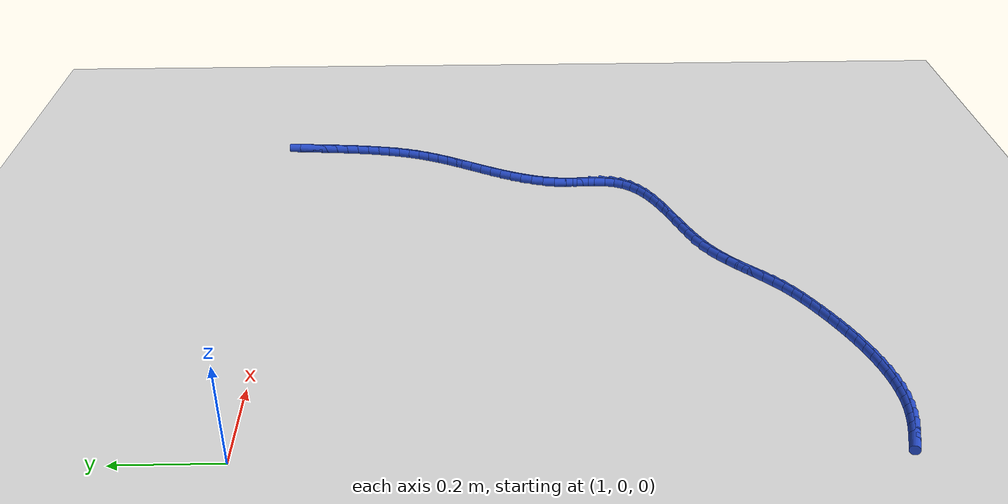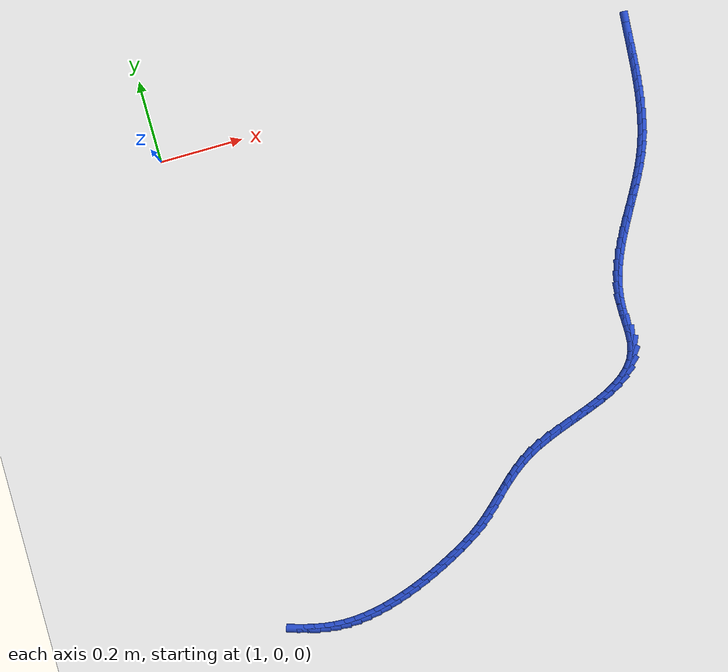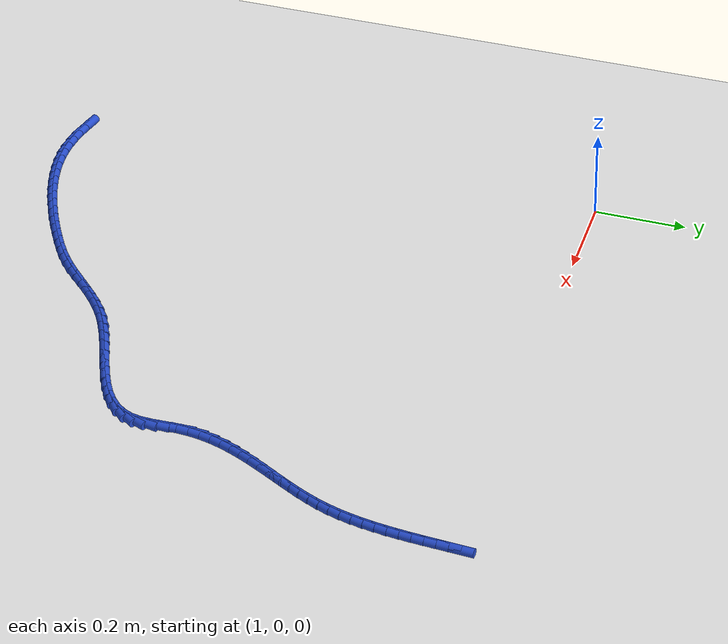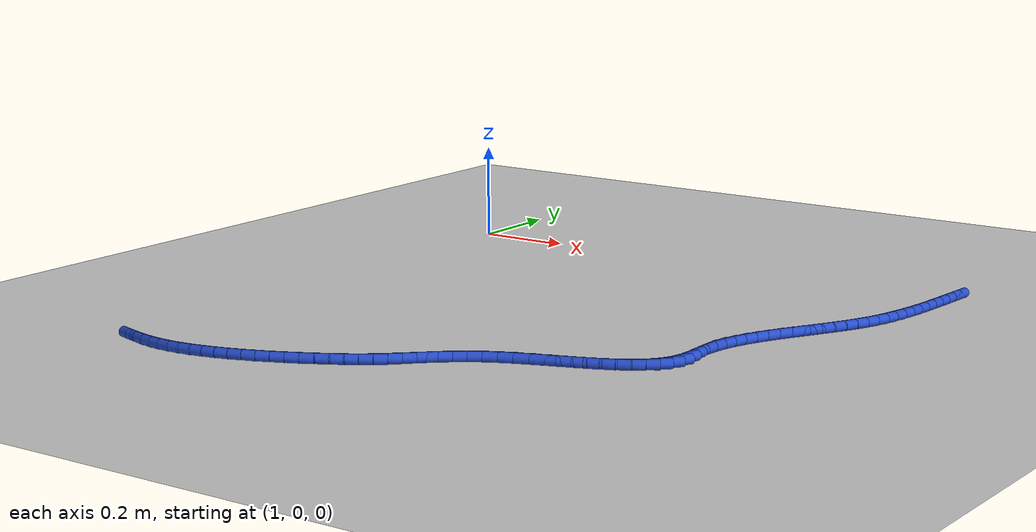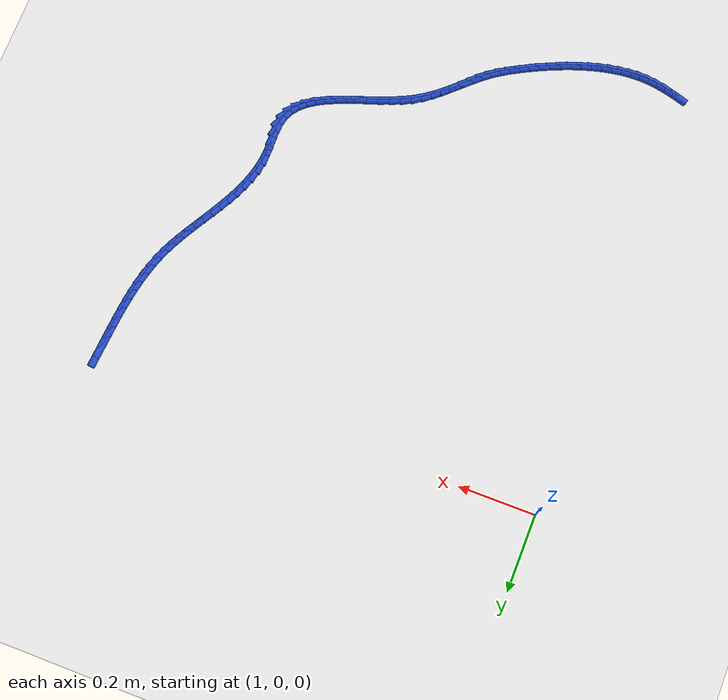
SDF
<sdf version="1.6">
 <world name="default">
  <model name="ground_plane">
   <static>1</static>
   <link name="link">
    <collision name="collision">
     <geometry><plane><normal>0 0 1</normal><size>100 100</size></plane></geometry>
     <surface><friction><ode><mu>100</mu><mu2>50</mu2></ode></friction></surface>
    </collision>
    <visual name="visual">
     <cast_shadows>0</cast_shadows>
     <geometry><plane><normal>0 0 1</normal><size>100 100</size></plane></geometry>
     <material>
      <script><uri>file://media/materials/scripts/gazebo.material</uri><name>Gazebo/WhiteGlow</name></script>
     </material>
    </visual>
   </link>
  </model>
  <model name="line">
   <link name="link_142">
    <pose>2.1596453572439294 0.006671324492739985 0.01 0 1.57 1.490713966930263</pose>
    <collision name="collision">
     <geometry><cylinder><radius>0.01</radius><length>0.08</length></cylinder></geometry>
    </collision>
    <visual name="visual">
     <material>
      <script><name>Gazebo/Blue</name><uri>file://media/materials/scripts/gazebo.material</uri></script>
     </material>
     <geometry><cylinder><radius>0.01</radius><length>0.08</length></cylinder></geometry>
    </visual>
   </link>
   <link name="link_143">
    <pose>2.157555107160567 -0.019374109094623566 0.01 0 1.57 1.4910467886138845</pose>
    <collision name="collision">
     <geometry><cylinder><radius>0.01</radius><length>0.08</length></cylinder></geometry>
    </collision>
    <visual name="visual">
     <material>
      <script><name>Gazebo/Blue</name><uri>file://media/materials/scripts/gazebo.material</uri></script>
     </material>
     <geometry><cylinder><radius>0.01</radius><length>0.08</length></cylinder></geometry>
    </visual>
   </link>
   <link name="link_144">
    <pose>2.155463413558285 -0.04554676646567959 0.01 0 1.57 1.4859185207809875</pose>
    <collision name="collision">
     <geometry><cylinder><radius>0.01</radius><length>0.08</length></cylinder></geometry>
    </collision>
    <visual name="visual">
     <material>
      <script><name>Gazebo/Blue</name><uri>file://media/materials/scripts/gazebo.material</uri></script>
     </material>
     <geometry><cylinder><radius>0.01</radius><length>0.08</length></cylinder></geometry>
    </visual>
   </link>
   <link name="link_145">
    <pose>2.15323071423497 -0.07178843334738891 0.01 0 1.57 1.4753526664296697</pose>
    <collision name="collision">
     <geometry><cylinder><radius>0.01</radius><length>0.08</length></cylinder></geometry>
    </collision>
    <visual name="visual">
     <material>
      <script><name>Gazebo/Blue</name><uri>file://media/materials/scripts/gazebo.material</uri></script>
     </material>
     <geometry><cylinder><radius>0.01</radius><length>0.08</length></cylinder></geometry>
    </visual>
   </link>
   <link name="link_146">
    <pose>2.1507174469885073 -0.09804089546671318 0.01 0 1.57 1.459320217050916</pose>
    <collision name="collision">
     <geometry><cylinder><radius>0.01</radius><length>0.08</length></cylinder></geometry>
    </collision>
    <visual name="visual">
     <material>
      <script><name>Gazebo/Blue</name><uri>file://media/materials/scripts/gazebo.material</uri></script>
     </material>
     <geometry><cylinder><radius>0.01</radius><length>0.08</length></cylinder></geometry>
    </visual>
   </link>
   <link name="link_147">
    <pose>2.1477840496167824 -0.12424593855061168 0.01 0 1.57 1.4377490927190884</pose>
    <collision name="collision">
     <geometry><cylinder><radius>0.01</radius><length>0.08</length></cylinder></geometry>
    </collision>
    <visual name="visual">
     <material>
      <script><name>Gazebo/Blue</name><uri>file://media/materials/scripts/gazebo.material</uri></script>
     </material>
     <geometry><cylinder><radius>0.01</radius><length>0.08</length></cylinder></geometry>
    </visual>
   </link>
   <link name="link_148">
    <pose>2.144290959917682 -0.15034534832604607 0.01 0 1.57 1.4105379036552386</pose>
    <collision name="collision">
     <geometry><cylinder><radius>0.01</radius><length>0.08</length></cylinder></geometry>
    </collision>
    <visual name="visual">
     <material>
      <script><name>Gazebo/Blue</name><uri>file://media/materials/scripts/gazebo.material</uri></script>
     </material>
     <geometry><cylinder><radius>0.01</radius><length>0.08</length></cylinder></geometry>
    </visual>
   </link>
   <link name="link_149">
    <pose>2.1400986156890895 -0.17628091051997705 0.01 0 1.57 1.377575152286418</pose>
    <collision name="collision">
     <geometry><cylinder><radius>0.01</radius><length>0.08</length></cylinder></geometry>
    </collision>
    <visual name="visual">
     <material>
      <script><name>Gazebo/Blue</name><uri>file://media/materials/scripts/gazebo.material</uri></script>
     </material>
     <geometry><cylinder><radius>0.01</radius><length>0.08</length></cylinder></geometry>
    </visual>
   </link>
   <link name="link_150">
    <pose>2.1350674547288926 -0.2019944108593657 0.01 0 1.57 1.3387650846030492</pose>
    <collision name="collision">
     <geometry><cylinder><radius>0.01</radius><length>0.08</length></cylinder></geometry>
    </collision>
    <visual name="visual">
     <material>
      <script><name>Gazebo/Blue</name><uri>file://media/materials/scripts/gazebo.material</uri></script>
     </material>
     <geometry><cylinder><radius>0.01</radius><length>0.08</length></cylinder></geometry>
    </visual>
   </link>
   <link name="link_151">
    <pose>2.1290579148349758 -0.22742763507117267 0.01 0 1.57 1.2940610272359603</pose>
    <collision name="collision">
     <geometry><cylinder><radius>0.01</radius><length>0.08</length></cylinder></geometry>
    </collision>
    <visual name="visual">
     <material>
      <script><name>Gazebo/Blue</name><uri>file://media/materials/scripts/gazebo.material</uri></script>
     </material>
     <geometry><cylinder><radius>0.01</radius><length>0.08</length></cylinder></geometry>
    </visual>
   </link>
   <link name="link_152">
    <pose>2.121930433805225 -0.2525223688823589 0.01 0 1.57 1.2435059514300444</pose>
    <collision name="collision">
     <geometry><cylinder><radius>0.01</radius><length>0.08</length></cylinder></geometry>
    </collision>
    <visual name="visual">
     <material>
      <script><name>Gazebo/Blue</name><uri>file://media/materials/scripts/gazebo.material</uri></script>
     </material>
     <geometry><cylinder><radius>0.01</radius><length>0.08</length></cylinder></geometry>
    </visual>
   </link>
   <link name="link_153">
    <pose>2.113545449437526 -0.2772203980198853 0.01 0 1.57 1.18800500666851</pose>
    <collision name="collision">
     <geometry><cylinder><radius>0.01</radius><length>0.08</length></cylinder></geometry>
    </collision>
    <visual name="visual">
     <material>
      <script><name>Gazebo/Blue</name><uri>file://media/materials/scripts/gazebo.material</uri></script>
     </material>
     <geometry><cylinder><radius>0.01</radius><length>0.08</length></cylinder></geometry>
    </visual>
   </link>
   <link name="link_154">
    <pose>2.1037813334355597 -0.30146985572381835 0.01 0 1.57 1.1373321220825232</pose>
    <collision name="collision">
     <geometry><cylinder><radius>0.01</radius><length>0.08</length></cylinder></geometry>
    </collision>
    <visual name="visual">
     <material>
      <script><name>Gazebo/Blue</name><uri>file://media/materials/scripts/gazebo.material</uri></script>
     </material>
     <geometry><cylinder><radius>0.01</radius><length>0.08</length></cylinder></geometry>
    </visual>
   </link>
   <link name="link_155">
    <pose>2.0927513252830425 -0.32530200415933735 0.01 0 1.57 1.0981591488980589</pose>
    <collision name="collision">
     <geometry><cylinder><radius>0.01</radius><length>0.08</length></cylinder></geometry>
    </collision>
    <visual name="visual">
     <material>
      <script><name>Gazebo/Blue</name><uri>file://media/materials/scripts/gazebo.material</uri></script>
     </material>
     <geometry><cylinder><radius>0.01</radius><length>0.08</length></cylinder></geometry>
    </visual>
   </link>
   <link name="link_156">
    <pose>2.080733741773238 -0.34880653283018986 0.01 0 1.57 1.0703942964932531</pose>
    <collision name="collision">
     <geometry><cylinder><radius>0.01</radius><length>0.08</length></cylinder></geometry>
    </collision>
    <visual name="visual">
     <material>
      <script><name>Gazebo/Blue</name><uri>file://media/materials/scripts/gazebo.material</uri></script>
     </material>
     <geometry><cylinder><radius>0.01</radius><length>0.08</length></cylinder></geometry>
    </visual>
   </link>
   <link name="link_157">
    <pose>2.068010329199488 -0.3720743450747982 0.01 0 1.57 1.0537744435064835</pose>
    <collision name="collision">
     <geometry><cylinder><radius>0.01</radius><length>0.08</length></cylinder></geometry>
    </collision>
    <visual name="visual">
     <material>
      <script><name>Gazebo/Blue</name><uri>file://media/materials/scripts/gazebo.material</uri></script>
     </material>
     <geometry><cylinder><radius>0.01</radius><length>0.08</length></cylinder></geometry>
    </visual>
   </link>
   <link name="link_158">
    <pose>2.054862833855132 -0.3951963442315844 0.01 0 1.57 1.0481070655105835</pose>
    <collision name="collision">
     <geometry><cylinder><radius>0.01</radius><length>0.08</length></cylinder></geometry>
    </collision>
    <visual name="visual">
     <material>
      <script><name>Gazebo/Blue</name><uri>file://media/materials/scripts/gazebo.material</uri></script>
     </material>
     <geometry><cylinder><radius>0.01</radius><length>0.08</length></cylinder></geometry>
    </visual>
   </link>
   <link name="link_159">
    <pose>2.041573002033511 -0.4182634336389699 0.01 0 1.57 1.05332701419321</pose>
    <collision name="collision">
     <geometry><cylinder><radius>0.01</radius><length>0.08</length></cylinder></geometry>
    </collision>
    <visual name="visual">
     <material>
      <script><name>Gazebo/Blue</name><uri>file://media/materials/scripts/gazebo.material</uri></script>
     </material>
     <geometry><cylinder><radius>0.01</radius><length>0.08</length></cylinder></geometry>
    </visual>
   </link>
   <link name="link_160">
    <pose>2.0284225800279643 -0.44136651663537646 0.01 0 1.57 1.0695151847565791</pose>
    <collision name="collision">
     <geometry><cylinder><radius>0.01</radius><length>0.08</length></cylinder></geometry>
    </collision>
    <visual name="visual">
     <material>
      <script><name>Gazebo/Blue</name><uri>file://media/materials/scripts/gazebo.material</uri></script>
     </material>
     <geometry><cylinder><radius>0.01</radius><length>0.08</length></cylinder></geometry>
    </visual>
   </link>
   <link name="link_161">
    <pose>2.0156933141318336 -0.4645964965592258 0.01 0 1.57 1.0968821565063727</pose>
    <collision name="collision">
     <geometry><cylinder><radius>0.01</radius><length>0.08</length></cylinder></geometry>
    </collision>
    <visual name="visual">
     <material>
      <script><name>Gazebo/Blue</name><uri>file://media/materials/scripts/gazebo.material</uri></script>
     </material>
     <geometry><cylinder><radius>0.01</radius><length>0.08</length></cylinder></geometry>
    </visual>
   </link>
   <link name="link_162">
    <pose>2.003666950638458 -0.4880442767489397 0.01 0 1.57 1.1357134553507002</pose>
    <collision name="collision">
     <geometry><cylinder><radius>0.01</radius><length>0.08</length></cylinder></geometry>
    </collision>
    <visual name="visual">
     <material>
      <script><name>Gazebo/Blue</name><uri>file://media/materials/scripts/gazebo.material</uri></script>
     </material>
     <geometry><cylinder><radius>0.01</radius><length>0.08</length></cylinder></geometry>
    </visual>
   </link>
   <link name="link_163">
    <pose>1.992625235841179 -0.5118007605429398 0.01 0 1.57 1.186267929265912</pose>
    <collision name="collision">
     <geometry><cylinder><radius>0.01</radius><length>0.08</length></cylinder></geometry>
    </collision>
    <visual name="visual">
     <material>
      <script><name>Gazebo/Blue</name><uri>file://media/materials/scripts/gazebo.material</uri></script>
     </material>
     <geometry><cylinder><radius>0.01</radius><length>0.08</length></cylinder></geometry>
    </visual>
   </link>
   <link name="link_164">
    <pose>1.9828499160333353 -0.5359568512796484 0.01 0 1.57 1.2486206070266457</pose>
    <collision name="collision">
     <geometry><cylinder><radius>0.01</radius><length>0.08</length></cylinder></geometry>
    </collision>
    <visual name="visual">
     <material>
      <script><name>Gazebo/Blue</name><uri>file://media/materials/scripts/gazebo.material</uri></script>
     </material>
     <geometry><cylinder><radius>0.01</radius><length>0.08</length></cylinder></geometry>
    </visual>
   </link>
   <link name="link_165">
    <pose>1.9746227375082688 -0.5606034522974861 0.01 0 1.57 1.3224521806362144</pose>
    <collision name="collision">
     <geometry><cylinder><radius>0.01</radius><length>0.08</length></cylinder></geometry>
    </collision>
    <visual name="visual">
     <material>
      <script><name>Gazebo/Blue</name><uri>file://media/materials/scripts/gazebo.material</uri></script>
     </material>
     <geometry><cylinder><radius>0.01</radius><length>0.08</length></cylinder></geometry>
    </visual>
   </link>
   <link name="link_166">
    <pose>1.9682254465593192 -0.585831466934875 0.01 0 1.57 1.4068148594786944</pose>
    <collision name="collision">
     <geometry><cylinder><radius>0.01</radius><length>0.08</length></cylinder></geometry>
    </collision>
    <visual name="visual">
     <material>
      <script><name>Gazebo/Blue</name><uri>file://media/materials/scripts/gazebo.material</uri></script>
     </material>
     <geometry><cylinder><radius>0.01</radius><length>0.08</length></cylinder></geometry>
    </visual>
   </link>
   <link name="link_167">
    <pose>1.9639397894798272 -0.6117317985302368 0.01 0 1.57 1.4998550329949896</pose>
    <collision name="collision">
     <geometry><cylinder><radius>0.01</radius><length>0.08</length></cylinder></geometry>
    </collision>
    <visual name="visual">
     <material>
      <script><name>Gazebo/Blue</name><uri>file://media/materials/scripts/gazebo.material</uri></script>
     </material>
     <geometry><cylinder><radius>0.01</radius><length>0.08</length></cylinder></geometry>
    </visual>
   </link>
   <link name="link_168">
    <pose>1.9620451448553669 -0.6383941990070843 0.01 0 1.57 -1.5650905997355675</pose>
    <collision name="collision">
     <geometry><cylinder><radius>0.01</radius><length>0.08</length></cylinder></geometry>
    </collision>
    <visual name="visual">
     <material>
      <script><name>Gazebo/Blue</name><uri>file://media/materials/scripts/gazebo.material</uri></script>
     </material>
     <geometry><cylinder><radius>0.01</radius><length>0.08</length></cylinder></geometry>
    </visual>
   </link>
   <link name="link_169">
    <pose>1.9622004135427602 -0.6656066823303368 0.01 0 1.57 -1.5552867641326729</pose>
    <collision name="collision">
     <geometry><cylinder><radius>0.01</radius><length>0.08</length></cylinder></geometry>
    </collision>
    <visual name="visual">
     <material>
      <script><name>Gazebo/Blue</name><uri>file://media/materials/scripts/gazebo.material</uri></script>
     </material>
     <geometry><cylinder><radius>0.01</radius><length>0.08</length></cylinder></geometry>
    </visual>
   </link>
   <link name="link_170">
    <pose>1.9626168256264271 -0.6924532610103301 0.01 0 1.57 1.5191116607278143</pose>
    <collision name="collision">
     <geometry><cylinder><radius>0.01</radius><length>0.08</length></cylinder></geometry>
    </collision>
    <visual name="visual">
     <material>
      <script><name>Gazebo/Blue</name><uri>file://media/materials/scripts/gazebo.material</uri></script>
     </material>
     <geometry><cylinder><radius>0.01</radius><length>0.08</length></cylinder></geometry>
    </visual>
   </link>
   <link name="link_171">
    <pose>1.9612995298582385 -0.7179177303252483 0.01 0 1.57 1.3570255863917549</pose>
    <collision name="collision">
     <geometry><cylinder><radius>0.01</radius><length>0.08</length></cylinder></geometry>
    </collision>
    <visual name="visual">
     <material>
      <script><name>Gazebo/Blue</name><uri>file://media/materials/scripts/gazebo.material</uri></script>
     </material>
     <geometry><cylinder><radius>0.01</radius><length>0.08</length></cylinder></geometry>
    </visual>
   </link>
   <link name="link_172">
    <pose>1.956288103492908 -0.7410025337274375 0.01 0 1.57 1.1303432248976586</pose>
    <collision name="collision">
     <geometry><cylinder><radius>0.01</radius><length>0.08</length></cylinder></geometry>
    </collision>
    <visual name="visual">
     <material>
      <script><name>Gazebo/Blue</name><uri>file://media/materials/scripts/gazebo.material</uri></script>
     </material>
     <geometry><cylinder><radius>0.01</radius><length>0.08</length></cylinder></geometry>
    </visual>
   </link>
   <link name="link_173">
    <pose>1.9467191729284845 -0.7613043305601355 0.01 0 1.57 0.9156881335399913</pose>
    <collision name="collision">
     <geometry><cylinder><radius>0.01</radius><length>0.08</length></cylinder></geometry>
    </collision>
    <visual name="visual">
     <material>
      <script><name>Gazebo/Blue</name><uri>file://media/materials/scripts/gazebo.material</uri></script>
     </material>
     <geometry><cylinder><radius>0.01</radius><length>0.08</length></cylinder></geometry>
    </visual>
   </link>
   <link name="link_174">
    <pose>1.9330287169437583 -0.7791235734626183 0.01 0 1.57 0.7362287923078192</pose>
    <collision name="collision">
     <geometry><cylinder><radius>0.01</radius><length>0.08</length></cylinder></geometry>
    </collision>
    <visual name="visual">
     <material>
      <script><name>Gazebo/Blue</name><uri>file://media/materials/scripts/gazebo.material</uri></script>
     </material>
     <geometry><cylinder><radius>0.01</radius><length>0.08</length></cylinder></geometry>
    </visual>
   </link>
   <link name="link_175">
    <pose>1.9157279671065288 -0.7948014756939903 0.01 0 1.57 0.5973744874964181</pose>
    <collision name="collision">
     <geometry><cylinder><radius>0.01</radius><length>0.08</length></cylinder></geometry>
    </collision>
    <visual name="visual">
     <material>
      <script><name>Gazebo/Blue</name><uri>file://media/materials/scripts/gazebo.material</uri></script>
     </material>
     <geometry><cylinder><radius>0.01</radius><length>0.08</length></cylinder></geometry>
    </visual>
   </link>
   <link name="link_176">
    <pose>1.8953281549845942 -0.8086792505133554 0.01 0 1.57 0.4953196164539025</pose>
    <collision name="collision">
     <geometry><cylinder><radius>0.01</radius><length>0.08</length></cylinder></geometry>
    </collision>
    <visual name="visual">
     <material>
      <script><name>Gazebo/Blue</name><uri>file://media/materials/scripts/gazebo.material</uri></script>
     </material>
     <geometry><cylinder><radius>0.01</radius><length>0.08</length></cylinder></geometry>
    </visual>
   </link>
   <link name="link_177">
    <pose>1.8723405121457537 -0.8210981111798172 0.01 0 1.57 0.42359193768522585</pose>
    <collision name="collision">
     <geometry><cylinder><radius>0.01</radius><length>0.08</length></cylinder></geometry>
    </collision>
    <visual name="visual">
     <material>
      <script><name>Gazebo/Blue</name><uri>file://media/materials/scripts/gazebo.material</uri></script>
     </material>
     <geometry><cylinder><radius>0.01</radius><length>0.08</length></cylinder></geometry>
    </visual>
   </link>
   <link name="link_178">
    <pose>1.8472762701578058 -0.8323992709524798 0.01 0 1.57 0.3763827350987682</pose>
    <collision name="collision">
     <geometry><cylinder><radius>0.01</radius><length>0.08</length></cylinder></geometry>
    </collision>
    <visual name="visual">
     <material>
      <script><name>Gazebo/Blue</name><uri>file://media/materials/scripts/gazebo.material</uri></script>
     </material>
     <geometry><cylinder><radius>0.01</radius><length>0.08</length></cylinder></geometry>
    </visual>
   </link>
   <link name="link_179">
    <pose>1.8206466605885487 -0.8429239430904463 0.01 0 1.57 0.3494912363657762</pose>
    <collision name="collision">
     <geometry><cylinder><radius>0.01</radius><length>0.08</length></cylinder></geometry>
    </collision>
    <visual name="visual">
     <material>
      <script><name>Gazebo/Blue</name><uri>file://media/materials/scripts/gazebo.material</uri></script>
     </material>
     <geometry><cylinder><radius>0.01</radius><length>0.08</length></cylinder></geometry>
    </visual>
   </link>
   <link name="link_180">
    <pose>1.792962915005782 -0.8530133408528207 0.01 0 1.57 0.34033151138237805</pose>
    <collision name="collision">
     <geometry><cylinder><radius>0.01</radius><length>0.08</length></cylinder></geometry>
    </collision>
    <visual name="visual">
     <material>
      <script><name>Gazebo/Blue</name><uri>file://media/materials/scripts/gazebo.material</uri></script>
     </material>
     <geometry><cylinder><radius>0.01</radius><length>0.08</length></cylinder></geometry>
    </visual>
   </link>
   <link name="link_181">
    <pose>1.764736264977303 -0.8630086774987074 0.01 0 1.57 0.3477309158872489</pose>
    <collision name="collision">
     <geometry><cylinder><radius>0.01</radius><length>0.08</length></cylinder></geometry>
    </collision>
    <visual name="visual">
     <material>
      <script><name>Gazebo/Blue</name><uri>file://media/materials/scripts/gazebo.material</uri></script>
     </material>
     <geometry><cylinder><radius>0.01</radius><length>0.08</length></cylinder></geometry>
    </visual>
   </link>
   <link name="link_182">
    <pose>1.7364779420709118 -0.8732511662872088 0.01 0 1.57 0.37176658622732095</pose>
    <collision name="collision">
     <geometry><cylinder><radius>0.01</radius><length>0.08</length></cylinder></geometry>
    </collision>
    <visual name="visual">
     <material>
      <script><name>Gazebo/Blue</name><uri>file://media/materials/scripts/gazebo.material</uri></script>
     </material>
     <geometry><cylinder><radius>0.01</radius><length>0.08</length></cylinder></geometry>
    </visual>
   </link>
   <link name="link_183">
    <pose>1.7086991778544072 -0.8840820204774293 0.01 0 1.57 0.4136847977145408</pose>
    <collision name="collision">
     <geometry><cylinder><radius>0.01</radius><length>0.08</length></cylinder></geometry>
    </collision>
    <visual name="visual">
     <material>
      <script><name>Gazebo/Blue</name><uri>file://media/materials/scripts/gazebo.material</uri></script>
     </material>
     <geometry><cylinder><radius>0.01</radius><length>0.08</length></cylinder></geometry>
    </visual>
   </link>
   <link name="link_184">
    <pose>1.6819112038955875 -0.895842453328473 0.01 0 1.57 0.4758554806199411</pose>
    <collision name="collision">
     <geometry><cylinder><radius>0.01</radius><length>0.08</length></cylinder></geometry>
    </collision>
    <visual name="visual">
     <material>
      <script><name>Gazebo/Blue</name><uri>file://media/materials/scripts/gazebo.material</uri></script>
     </material>
     <geometry><cylinder><radius>0.01</radius><length>0.08</length></cylinder></geometry>
    </visual>
   </link>
   <link name="link_185">
    <pose>1.656625251762251 -0.9088736780994433 0.01 0 1.57 0.5575635399087147</pose>
    <collision name="collision">
     <geometry><cylinder><radius>0.01</radius><length>0.08</length></cylinder></geometry>
    </collision>
    <visual name="visual">
     <material>
      <script><name>Gazebo/Blue</name><uri>file://media/materials/scripts/gazebo.material</uri></script>
     </material>
     <geometry><cylinder><radius>0.01</radius><length>0.08</length></cylinder></geometry>
    </visual>
   </link>
   <link name="link_186">
    <pose>1.6332587301314405 -0.9234441193218855 0.01 0 1.57 0.6343387461749759</pose>
    <collision name="collision">
     <geometry><cylinder><radius>0.01</radius><length>0.08</length></cylinder></geometry>
    </collision>
    <visual name="visual">
     <material>
      <script><name>Gazebo/Blue</name><uri>file://media/materials/scripts/gazebo.material</uri></script>
     </material>
     <geometry><cylinder><radius>0.01</radius><length>0.08</length></cylinder></geometry>
    </visual>
   </link>
   <link name="link_187">
    <pose>1.6116304473324177 -0.9393578014509942 0.01 0 1.57 0.6934701820432766</pose>
    <collision name="collision">
     <geometry><cylinder><radius>0.01</radius><length>0.08</length></cylinder></geometry>
    </collision>
    <visual name="visual">
     <material>
      <script><name>Gazebo/Blue</name><uri>file://media/materials/scripts/gazebo.material</uri></script>
     </material>
     <geometry><cylinder><radius>0.01</radius><length>0.08</length></cylinder></geometry>
    </visual>
   </link>
   <link name="link_188">
    <pose>1.591323990529443 -0.9562362620333084 0.01 0 1.57 0.7328976451598445</pose>
    <collision name="collision">
     <geometry><cylinder><radius>0.01</radius><length>0.08</length></cylinder></geometry>
    </collision>
    <visual name="visual">
     <material>
      <script><name>Gazebo/Blue</name><uri>file://media/materials/scripts/gazebo.material</uri></script>
     </material>
     <geometry><cylinder><radius>0.01</radius><length>0.08</length></cylinder></geometry>
    </visual>
   </link>
   <link name="link_189">
    <pose>1.571922386906376 -0.9737006041770286 0.01 0 1.57 0.751452079212987</pose>
    <collision name="collision">
     <geometry><cylinder><radius>0.01</radius><length>0.08</length></cylinder></geometry>
    </collision>
    <visual name="visual">
     <material>
      <script><name>Gazebo/Blue</name><uri>file://media/materials/scripts/gazebo.material</uri></script>
     </material>
     <geometry><cylinder><radius>0.01</radius><length>0.08</length></cylinder></geometry>
    </visual>
   </link>
   <link name="link_190">
    <pose>1.5530086636470788 -0.9913719309903575 0.01 0 1.57 0.748449695418957</pose>
    <collision name="collision">
     <geometry><cylinder><radius>0.01</radius><length>0.08</length></cylinder></geometry>
    </collision>
    <visual name="visual">
     <material>
      <script><name>Gazebo/Blue</name><uri>file://media/materials/scripts/gazebo.material</uri></script>
     </material>
     <geometry><cylinder><radius>0.01</radius><length>0.08</length></cylinder></geometry>
    </visual>
   </link>
   <link name="link_191">
    <pose>1.5341658479354128 -1.008871345581495 0.01 0 1.57 0.7234842778627935</pose>
    <collision name="collision">
     <geometry><cylinder><radius>0.01</radius><length>0.08</length></cylinder></geometry>
    </collision>
    <visual name="visual">
     <material>
      <script><name>Gazebo/Blue</name><uri>file://media/materials/scripts/gazebo.material</uri></script>
     </material>
     <geometry><cylinder><radius>0.01</radius><length>0.08</length></cylinder></geometry>
    </visual>
   </link>
   <link name="link_192">
    <pose>1.514976966955239 -1.0258199510586439 0.01 0 1.57 0.6764916088470139</pose>
    <collision name="collision">
     <geometry><cylinder><radius>0.01</radius><length>0.08</length></cylinder></geometry>
    </collision>
    <visual name="visual">
     <material>
      <script><name>Gazebo/Blue</name><uri>file://media/materials/scripts/gazebo.material</uri></script>
     </material>
     <geometry><cylinder><radius>0.01</radius><length>0.08</length></cylinder></geometry>
    </visual>
   </link>
   <link name="link_193">
    <pose>1.4950250478904183 -1.0418388505300045 0.01 0 1.57 0.6117529380137335</pose>
    <collision name="collision">
     <geometry><cylinder><radius>0.01</radius><length>0.08</length></cylinder></geometry>
    </collision>
    <visual name="visual">
     <material>
      <script><name>Gazebo/Blue</name><uri>file://media/materials/scripts/gazebo.material</uri></script>
     </material>
     <geometry><cylinder><radius>0.01</radius><length>0.08</length></cylinder></geometry>
    </visual>
   </link>
   <link name="link_194">
    <pose>1.4739567872891588 -1.0566188946109885 0.01 0 1.57 0.5530392176780746</pose>
    <collision name="collision">
     <geometry><cylinder><radius>0.01</radius><length>0.08</length></cylinder></geometry>
    </collision>
    <visual name="visual">
     <material>
      <script><name>Gazebo/Blue</name><uri>file://media/materials/scripts/gazebo.material</uri></script>
     </material>
     <geometry><cylinder><radius>0.01</radius><length>0.08</length></cylinder></geometry>
    </visual>
   </link>
   <link name="link_195">
    <pose>1.4518161880988432 -1.0702861688408318 0.01 0 1.57 0.5091386542021716</pose>
    <collision name="collision">
     <geometry><cylinder><radius>0.01</radius><length>0.08</length></cylinder></geometry>
    </collision>
    <visual name="visual">
     <material>
      <script><name>Gazebo/Blue</name><uri>file://media/materials/scripts/gazebo.material</uri></script>
     </material>
     <geometry><cylinder><radius>0.01</radius><length>0.08</length></cylinder></geometry>
    </visual>
   </link>
   <link name="link_196">
    <pose>1.4288002247680316 -1.0831343335569585 0.01 0 1.57 0.47931383028668095</pose>
    <collision name="collision">
     <geometry><cylinder><radius>0.01</radius><length>0.08</length></cylinder></geometry>
    </collision>
    <visual name="visual">
     <material>
      <script><name>Gazebo/Blue</name><uri>file://media/materials/scripts/gazebo.material</uri></script>
     </material>
     <geometry><cylinder><radius>0.01</radius><length>0.08</length></cylinder></geometry>
    </visual>
   </link>
   <link name="link_197">
    <pose>1.4051042140612224 -1.0954500746867744 0.01 0 1.57 0.45564836634161904</pose>
    <collision name="collision">
     <geometry><cylinder><radius>0.01</radius><length>0.08</length></cylinder></geometry>
    </collision>
    <visual name="visual">
     <material>
      <script><name>Gazebo/Blue</name><uri>file://media/materials/scripts/gazebo.material</uri></script>
     </material>
     <geometry><cylinder><radius>0.01</radius><length>0.08</length></cylinder></geometry>
    </visual>
   </link>
   <link name="link_198">
    <pose>1.3808708820888178 -1.1073253904559908 0.01 0 1.57 0.42984885341739476</pose>
    <collision name="collision">
     <geometry><cylinder><radius>0.01</radius><length>0.08</length></cylinder></geometry>
    </collision>
    <visual name="visual">
     <material>
      <script><name>Gazebo/Blue</name><uri>file://media/materials/scripts/gazebo.material</uri></script>
     </material>
     <geometry><cylinder><radius>0.01</radius><length>0.08</length></cylinder></geometry>
    </visual>
   </link>
   <link name="link_199">
    <pose>1.3561861071767907 -1.1186418317268534 0.01 0 1.57 0.4012293039221145</pose>
    <collision name="collision">
     <geometry><cylinder><radius>0.01</radius><length>0.08</length></cylinder></geometry>
    </collision>
    <visual name="visual">
     <material>
      <script><name>Gazebo/Blue</name><uri>file://media/materials/scripts/gazebo.material</uri></script>
     </material>
     <geometry><cylinder><radius>0.01</radius><length>0.08</length></cylinder></geometry>
    </visual>
   </link>
   <link name="link_200">
    <pose>1.3311329355111832 -1.1292704649357423 0.01 0 1.57 0.3694514255431271</pose>
    <collision name="collision">
     <geometry><cylinder><radius>0.01</radius><length>0.08</length></cylinder></geometry>
    </collision>
    <visual name="visual">
     <material>
      <script><name>Gazebo/Blue</name><uri>file://media/materials/scripts/gazebo.material</uri></script>
     </material>
     <geometry><cylinder><radius>0.01</radius><length>0.08</length></cylinder></geometry>
    </visual>
   </link>
   <link name="link_201">
    <pose>1.305794413278037 -1.13908235651904 0.01 0 1.57 0.3341237526181898</pose>
    <collision name="collision">
     <geometry><cylinder><radius>0.01</radius><length>0.08</length></cylinder></geometry>
    </collision>
    <visual name="visual">
     <material>
      <script><name>Gazebo/Blue</name><uri>file://media/materials/scripts/gazebo.material</uri></script>
     </material>
     <geometry><cylinder><radius>0.01</radius><length>0.08</length></cylinder></geometry>
    </visual>
   </link>
   <link name="link_202">
    <pose>1.2802535866633933 -1.1479485729131276 0.01 0 1.57 0.2947992938235111</pose>
    <collision name="collision">
     <geometry><cylinder><radius>0.01</radius><length>0.08</length></cylinder></geometry>
    </collision>
    <visual name="visual">
     <material>
      <script><name>Gazebo/Blue</name><uri>file://media/materials/scripts/gazebo.material</uri></script>
     </material>
     <geometry><cylinder><radius>0.01</radius><length>0.08</length></cylinder></geometry>
    </visual>
   </link>
   <link name="link_203">
    <pose>1.254593501853294 -1.1557401805543868 0.01 0 1.57 0.2509760765649676</pose>
    <collision name="collision">
     <geometry><cylinder><radius>0.01</radius><length>0.08</length></cylinder></geometry>
    </collision>
    <visual name="visual">
     <material>
      <script><name>Gazebo/Blue</name><uri>file://media/materials/scripts/gazebo.material</uri></script>
     </material>
     <geometry><cylinder><radius>0.01</radius><length>0.08</length></cylinder></geometry>
    </visual>
   </link>
   <link name="link_204">
    <pose>1.228897205033781 -1.1623282458791993 0.01 0 1.57 0.2021031723854797</pose>
    <collision name="collision">
     <geometry><cylinder><radius>0.01</radius><length>0.08</length></cylinder></geometry>
    </collision>
    <visual name="visual">
     <material>
      <script><name>Gazebo/Blue</name><uri>file://media/materials/scripts/gazebo.material</uri></script>
     </material>
     <geometry><cylinder><radius>0.01</radius><length>0.08</length></cylinder></geometry>
    </visual>
   </link>
   <link name="link_205">
    <pose>1.2032477423908956 -1.167583835323946 0.01 0 1.57 0.14759600386675367</pose>
    <collision name="collision">
     <geometry><cylinder><radius>0.01</radius><length>0.08</length></cylinder></geometry>
    </collision>
    <visual name="visual">
     <material>
      <script><name>Gazebo/Blue</name><uri>file://media/materials/scripts/gazebo.material</uri></script>
     </material>
     <geometry><cylinder><radius>0.01</radius><length>0.08</length></cylinder></geometry>
    </visual>
   </link>
   <link name="link_206">
    <pose>1.177728160110679 -1.171378015325009 0.01 0 1.57 0.08686612112745355</pose>
    <collision name="collision">
     <geometry><cylinder><radius>0.01</radius><length>0.08</length></cylinder></geometry>
    </collision>
    <visual name="visual">
     <material>
      <script><name>Gazebo/Blue</name><uri>file://media/materials/scripts/gazebo.material</uri></script>
     </material>
     <geometry><cylinder><radius>0.01</radius><length>0.08</length></cylinder></geometry>
    </visual>
   </link>
   <link name="link_207">
    <pose>1.152421504379174 -1.1735818523187693 0.01 0 1.57 0.019371714431050277</pose>
    <collision name="collision">
     <geometry><cylinder><radius>0.01</radius><length>0.08</length></cylinder></geometry>
    </collision>
    <visual name="visual">
     <material>
      <script><name>Gazebo/Blue</name><uri>file://media/materials/scripts/gazebo.material</uri></script>
     </material>
     <geometry><cylinder><radius>0.01</radius><length>0.08</length></cylinder></geometry>
    </visual>
   </link>
   <link name="link_208">
    <pose>1.1274108213824208 -1.1740664127416087 0.01 0 1.57 -0.05501796159969437</pose>
    <collision name="collision">
     <geometry><cylinder><radius>0.01</radius><length>0.08</length></cylinder></geometry>
    </collision>
    <visual name="visual">
     <material>
      <script><name>Gazebo/Blue</name><uri>file://media/materials/scripts/gazebo.material</uri></script>
     </material>
     <geometry><cylinder><radius>0.01</radius><length>0.08</length></cylinder></geometry>
    </visual>
   </link>
   <link name="link_209">
    <pose>1.1027750374317373 -1.172709632869813 0.01 0 1.57 -0.1288996851223343</pose>
    <collision name="collision">
     <geometry><cylinder><radius>0.01</radius><length>0.08</length></cylinder></geometry>
    </collision>
    <visual name="visual">
     <material>
      <script><name>Gazebo/Blue</name><uri>file://media/materials/scripts/gazebo.material</uri></script>
     </material>
     <geometry><cylinder><radius>0.01</radius><length>0.08</length></cylinder></geometry>
    </visual>
   </link>
   <link name="link_210">
    <pose>1.078489713672054 -1.169561809110034 0.01 0 1.57 -0.19316916964922481</pose>
    <collision name="collision">
     <geometry><cylinder><radius>0.01</radius><length>0.08</length></cylinder></geometry>
    </collision>
    <visual name="visual">
     <material>
      <script><name>Gazebo/Blue</name><uri>file://media/materials/scripts/gazebo.material</uri></script>
     </material>
     <geometry><cylinder><radius>0.01</radius><length>0.08</length></cylinder></geometry>
    </visual>
   </link>
   <link name="link_211">
    <pose>1.0544220248444451 -1.1648539708503718 0.01 0 1.57 -0.2462054400652278</pose>
    <collision name="collision">
     <geometry><cylinder><radius>0.01</radius><length>0.08</length></cylinder></geometry>
    </collision>
    <visual name="visual">
     <material>
      <script><name>Gazebo/Blue</name><uri>file://media/materials/scripts/gazebo.material</uri></script>
     </material>
     <geometry><cylinder><radius>0.01</radius><length>0.08</length></cylinder></geometry>
    </visual>
   </link>
   <link name="link_212">
    <pose>1.0304340208593707 -1.158825693070287 0.01 0 1.57 -0.287455960144394</pose>
    <collision name="collision">
     <geometry><cylinder><radius>0.01</radius><length>0.08</length></cylinder></geometry>
    </collision>
    <visual name="visual">
     <material>
      <script><name>Gazebo/Blue</name><uri>file://media/materials/scripts/gazebo.material</uri></script>
     </material>
     <geometry><cylinder><radius>0.01</radius><length>0.08</length></cylinder></geometry>
    </visual>
   </link>
  </model>
 </world>
</sdf>
